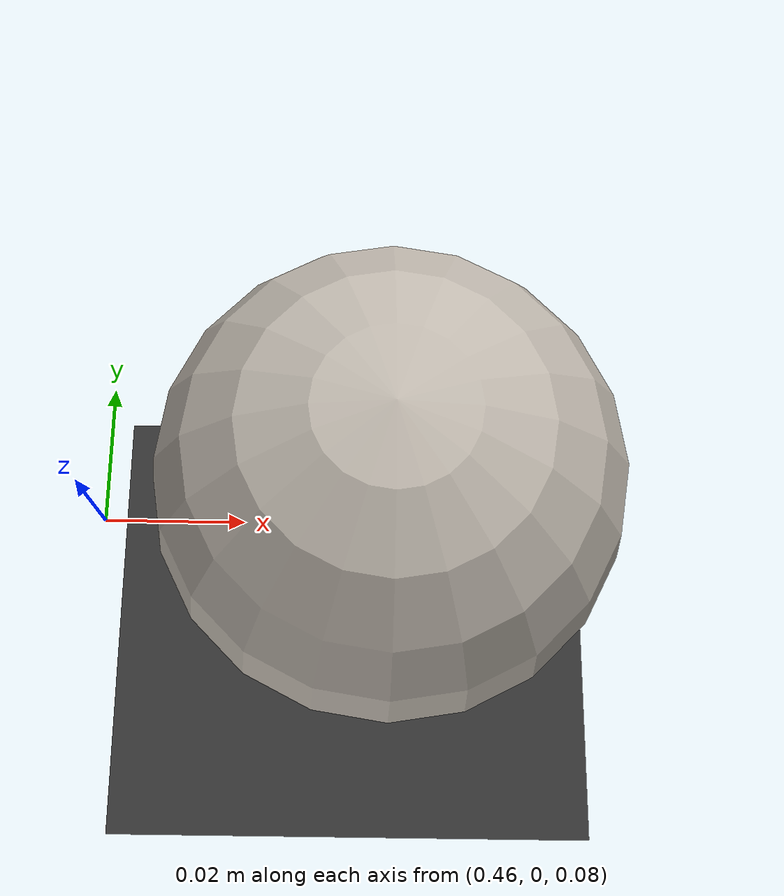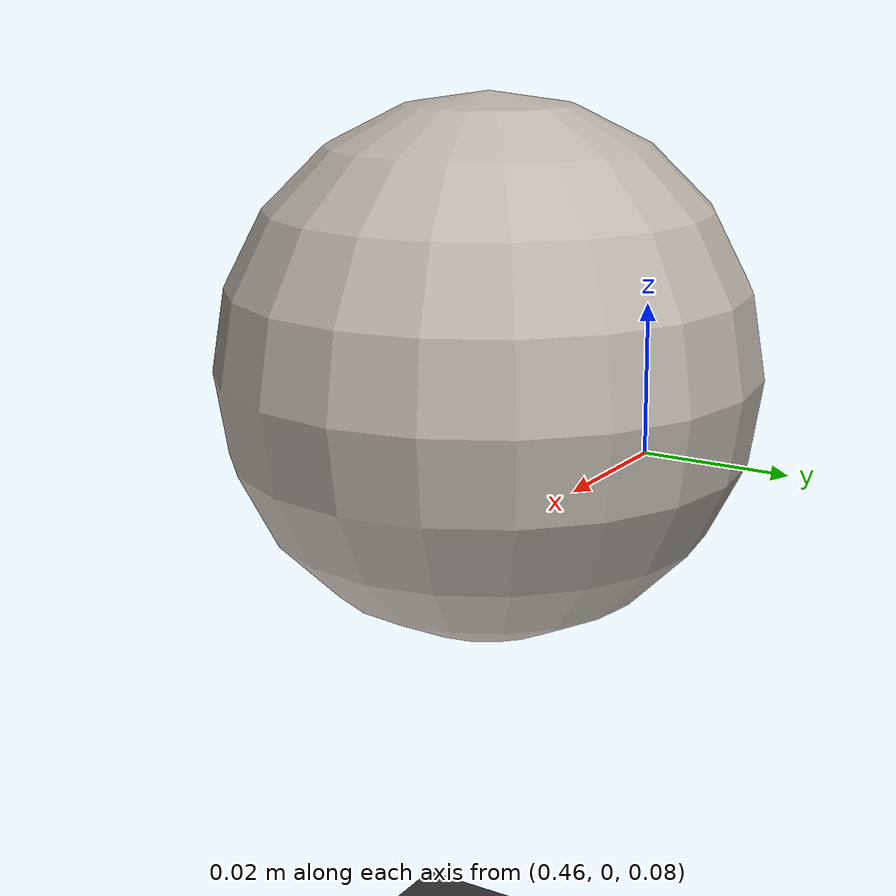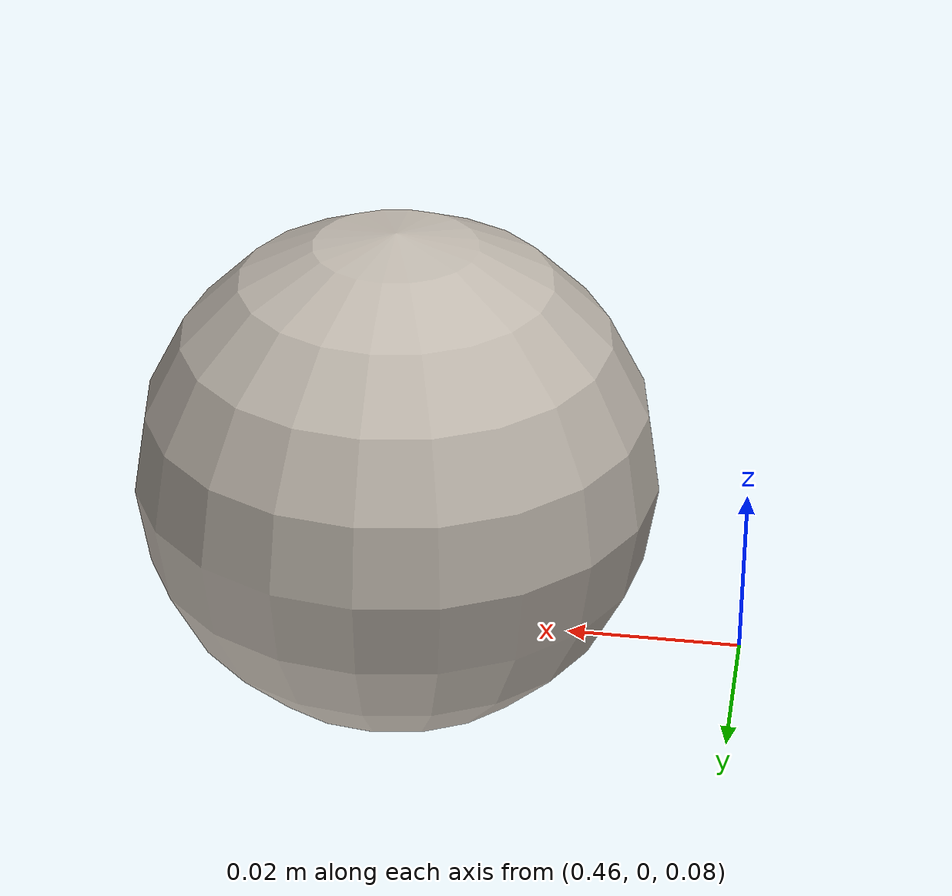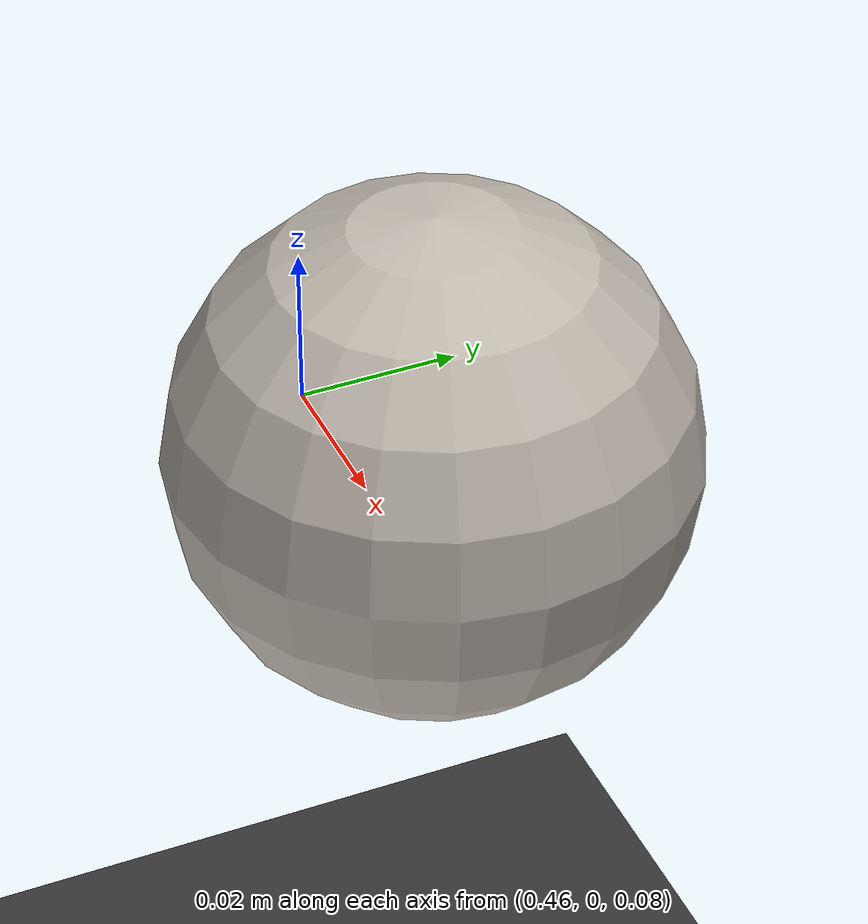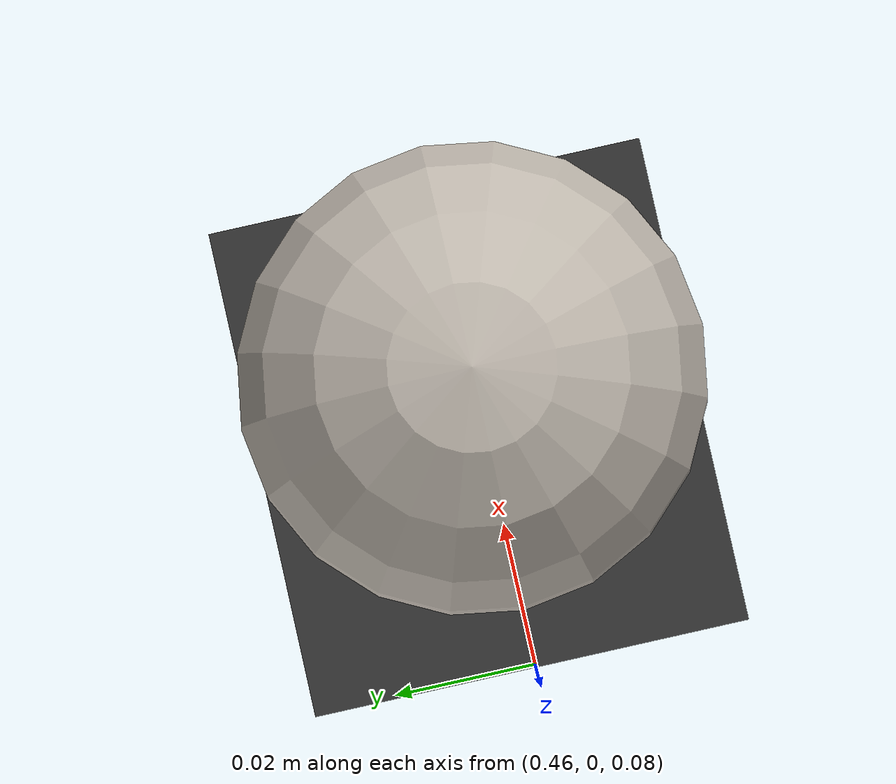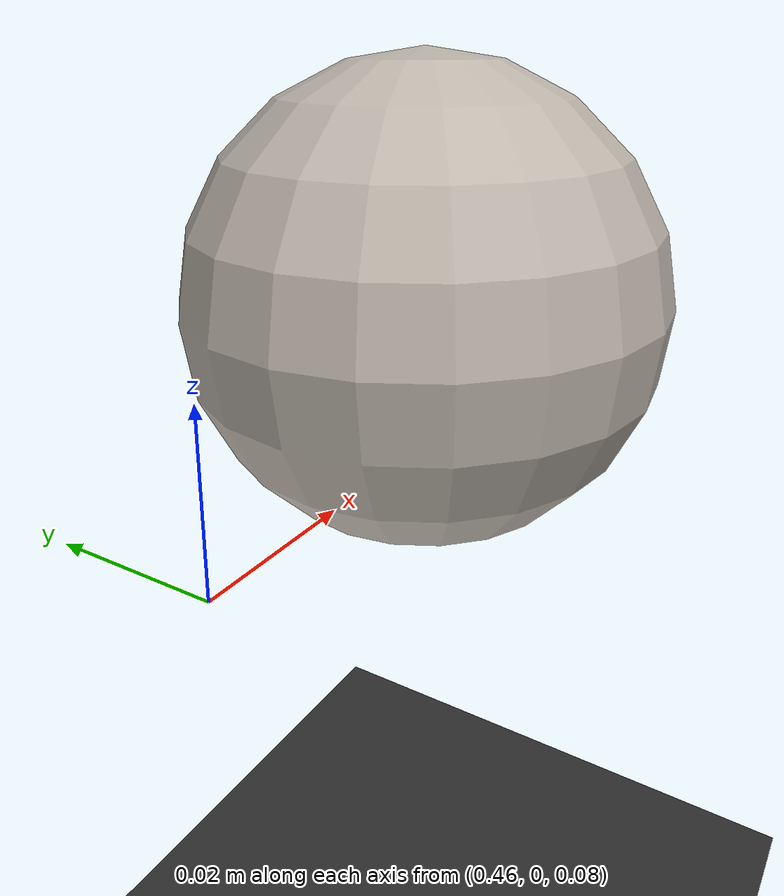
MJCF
<mujoco model="dog">
  <asset>
    <texture name="tennis_ball" file="tennis_ball.png" gridsize="3 4" gridlayout=".U..LFRB.D.."/>
    <material name="tennis_ball" texture="tennis_ball"/>
  </asset>
  <default>
    <default class="bouncy">
      <geom condim="6" priority="1" friction="0.5 0.001 0.001" solref="-5000 -5" solimp="0.5 0.9 0.01"/>
    </default>
  </default>
  <worldbody>
    <light diffuse=".5 .5 .5" pos="0 0 3" dir="0 0 -1"/>
    <geom type="plane" size="1 1 0.1" rgba=".2 0.2 0.2 1"/>
    <body name="ball" pos="0.5 0 0.1">
      <freejoint name="ball_root"/>
      <geom name="ball" type="sphere" class="bouncy" size="0.03" material="tennis_ball" mass="0.056"/>
    </body>
  </worldbody>
</mujoco>
